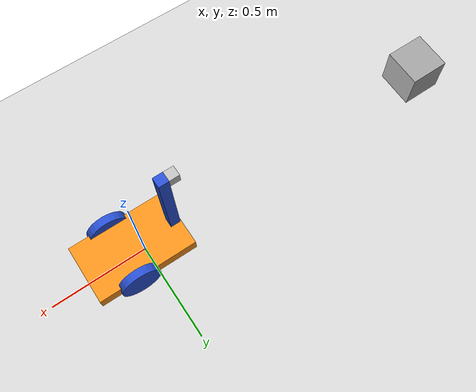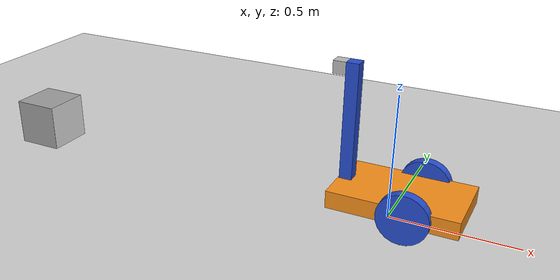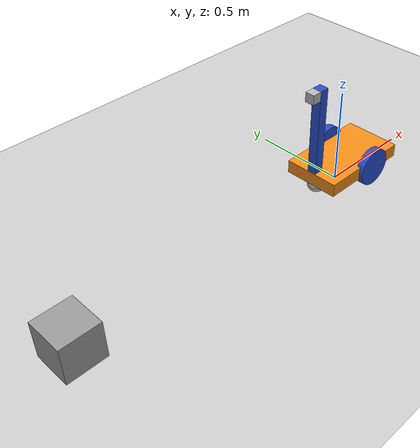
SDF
<sdf version="1.7">
 <world name="default">
  <light name="sun" type="directional">
   <pose>0 0 10 0 -0 0</pose>
   <diffuse>0.8 0.8 0.8 1</diffuse>
   <specular>0.2 0.2 0.2 1</specular>
   <attenuation>
    <range>1000</range>
    <constant>0.9</constant>
    <linear>0.01</linear>
    <quadratic>0.001</quadratic>
   </attenuation>
   <direction>-0.5 0.1 -0.9</direction>
   <spot><inner_angle>0</inner_angle><outer_angle>0</outer_angle><falloff>0</falloff></spot>
  </light>
  <model name="ground_plane">
   <static>1</static>
   <link name="link">
    <collision name="collision">
     <geometry><plane><normal>0 0 1</normal><size>100 100</size></plane></geometry>
     <surface>
      <contact><collide_bitmask>65535</collide_bitmask></contact>
      <friction><ode><mu>100</mu><mu2>50</mu2></ode></friction>
     </surface>
    </collision>
    <visual name="visual">
     <cast_shadows>0</cast_shadows>
     <geometry><plane><normal>0 0 1</normal><size>100 100</size></plane></geometry>
     <material>
      <script><uri>file://media/materials/scripts/gazebo.material</uri><name>Gazebo/Grey</name></script>
     </material>
    </visual>
   </link>
  </model>
  <gravity>0 0 -9.8</gravity>
  <magnetic_field>6e-06 2.3e-05 -4.2e-05</magnetic_field>
  <atmosphere type="adiabatic"/>
  <physics type="ode">
   <max_step_size>0.001</max_step_size>
   <real_time_factor>1</real_time_factor>
   <real_time_update_rate>1000</real_time_update_rate>
  </physics>
  <scene><ambient>0.4 0.4 0.4 1</ambient><background>0.7 0.7 0.7 1</background><shadows>1</shadows></scene>
  <spherical_coordinates>
   <surface_model>EARTH_WGS84</surface_model>
   <latitude_deg>0</latitude_deg>
   <longitude_deg>0</longitude_deg>
   <elevation>0</elevation>
   <heading_deg>0</heading_deg>
  </spherical_coordinates>
  <model name="marker20_box">
   <link name="marker">
    <inertial>
     <mass>0.1</mass>
     <inertia><ixx>0</ixx><ixy>0</ixy><ixz>0</ixz><iyy>0</iyy><iyz>0</iyz><izz>0</izz></inertia>
    </inertial>
    <self_collide>1</self_collide>
    <pose>-0.76428 -0.101106 0.120004 -0.015494 1.56996 -0.015507</pose>
    <visual name="visual">
     <geometry><box><size>0.2 0.2 0.001</size></box></geometry>
     <material>
      <script>
       <uri>model://marker20/material/scripts</uri>
       <uri>model://marker20/material/textures</uri>
       <name>Aruco/marker20</name>
      </script>
      <shader type="pixel"><normal_map>__default__</normal_map></shader>
      <emissive>0 0 0 1</emissive>
      <ambient>1 1 1 1</ambient>
      <diffuse>1 1 1 1</diffuse>
      <specular>0 0 0 1</specular>
     </material>
    </visual>
    <collision name="collision">
     <geometry><box><size>0.2 0.2 0.02</size></box></geometry>
     <surface>
      <friction>
       <ode><mu>1</mu><mu2>1</mu2><fdir1>0 0 0</fdir1><slip1>0</slip1><slip2>0</slip2></ode>
       <torsional>
        <coefficient>1</coefficient>
        <patch_radius>0</patch_radius>
        <surface_radius>0</surface_radius>
        <use_patch_radius>1</use_patch_radius>
        <ode><slip>0</slip></ode>
       </torsional>
      </friction>
      <bounce><restitution_coefficient>0</restitution_coefficient><threshold>1e+06</threshold></bounce>
      <contact>
       <collide_without_contact>0</collide_without_contact>
       <collide_without_contact_bitmask>1</collide_without_contact_bitmask>
       <collide_bitmask>1</collide_bitmask>
       <ode>
        <soft_cfm>0</soft_cfm>
        <soft_erp>0.2</soft_erp>
        <kp>1e+13</kp>
        <kd>1</kd>
        <max_vel>0.01</max_vel>
        <min_depth>0</min_depth>
       </ode>
       <bullet>
        <split_impulse>1</split_impulse>
        <split_impulse_penetration_threshold>-0.01</split_impulse_penetration_threshold>
        <soft_cfm>0</soft_cfm>
        <soft_erp>0.2</soft_erp>
        <kp>1e+13</kp>
        <kd>1</kd>
       </bullet>
      </contact>
     </surface>
    </collision>
   </link>
   <link name="link_1">
    <inertial>
     <mass>1</mass>
     <inertia>
      <ixx>0.166667</ixx>
      <ixy>0</ixy>
      <ixz>0</ixz>
      <iyy>0.166667</iyy>
      <iyz>0</iyz>
      <izz>0.166667</izz>
     </inertia>
    </inertial>
    <pose>-0.86428 -0.101106 0.12 -1.3e-05 -4.2e-05 0</pose>
    <visual name="visual">
     <geometry><box><size>0.2 0.2 0.2</size></box></geometry>
     <material>
      <lighting>1</lighting>
      <script><uri>file://media/materials/scripts/gazebo.material</uri><name>Gazebo/Grey</name></script>
      <shader type="pixel"><normal_map>__default__</normal_map></shader>
      <emissive>0 0 0 1</emissive>
      <ambient>0.3 0.3 0.3 1</ambient>
      <diffuse>0.7 0.7 0.7 1</diffuse>
      <specular>0.01 0.01 0.01 1</specular>
     </material>
    </visual>
    <collision name="collision">
     <geometry><box><size>0.2 0.2 0.2</size></box></geometry>
     <surface>
      <friction>
       <ode><mu>1</mu><mu2>1</mu2><fdir1>0 0 0</fdir1><slip1>0</slip1><slip2>0</slip2></ode>
       <torsional>
        <coefficient>1</coefficient>
        <patch_radius>0</patch_radius>
        <surface_radius>0</surface_radius>
        <use_patch_radius>1</use_patch_radius>
        <ode><slip>0</slip></ode>
       </torsional>
      </friction>
      <bounce><restitution_coefficient>0</restitution_coefficient><threshold>1e+06</threshold></bounce>
      <contact>
       <collide_without_contact>0</collide_without_contact>
       <collide_without_contact_bitmask>1</collide_without_contact_bitmask>
       <collide_bitmask>1</collide_bitmask>
       <ode>
        <soft_cfm>0</soft_cfm>
        <soft_erp>0.2</soft_erp>
        <kp>1e+13</kp>
        <kd>1</kd>
        <max_vel>0.01</max_vel>
        <min_depth>0</min_depth>
       </ode>
       <bullet>
        <split_impulse>1</split_impulse>
        <split_impulse_penetration_threshold>-0.01</split_impulse_penetration_threshold>
        <soft_cfm>0</soft_cfm>
        <soft_erp>0.2</soft_erp>
        <kp>1e+13</kp>
        <kd>1</kd>
       </bullet>
      </contact>
     </surface>
    </collision>
   </link>
   <joint name="link_1_JOINT_3" type="fixed">
    <parent>link_1</parent>
    <child>marker</child>
    <physics>
     <ode><limit><cfm>0</cfm><erp>0.2</erp></limit><suspension><cfm>0</cfm><erp>0.2</erp></suspension></ode>
    </physics>
   </joint>
   <static>0</static>
   <pose>-0.784105 0.079602 -0.020018 6e-06 1.8e-05 0.001478</pose>
  </model>
  <model name="robot1">
   <link name="link_chassis">
    <inertial>
     <pose>1e-06 0 0.1 0 -0 0</pose>
     <mass>5.00002</mass>
     <inertia>
      <ixx>0.039545</ixx>
      <ixy>0</ixy>
      <ixz>-7.24998e-07</ixz>
      <iyy>0.106213</iyy>
      <iyz>0</iyz>
      <izz>0.106212</izz>
     </inertia>
    </inertial>
    <collision name="link_chassis_fixed_joint_lump__collision_chassis_collision">
     <geometry><box><size>0.5 0.3 0.07</size></box></geometry>
    </collision>
    <collision name="link_chassis_fixed_joint_lump__caster_front_collision_collision_1">
     <pose>0.35 0 -0.05 0 -0 0</pose>
     <geometry><sphere><radius>0.05</radius></sphere></geometry>
    </collision>
    <collision name="link_chassis_fixed_joint_lump__camera_holder_link_collision_2">
     <pose>0.22 0 0.25 0 -0 0</pose>
     <geometry><box><size>0.05 0.05 0.5</size></box></geometry>
    </collision>
    <collision name="link_chassis_fixed_joint_lump__camera_link_collision_3">
     <pose>0.27 0 0.475 0 -0 0</pose>
     <geometry><box><size>0.05 0.05 0.05</size></box></geometry>
    </collision>
    <visual name="link_chassis_visual">
     <geometry><box><size>0.5 0.3 0.07</size></box></geometry>
     <material>
      <script><name>Gazebo/Orange</name><uri>file://media/materials/scripts/gazebo.material</uri></script>
     </material>
    </visual>
    <visual name="link_chassis_fixed_joint_lump__caster_front_visual_visual_1">
     <pose>0.2 0 -0.05 0 -0 0</pose>
     <geometry><sphere><radius>0.05</radius></sphere></geometry>
    </visual>
    <visual name="link_chassis_fixed_joint_lump__camera_holder_link_visual_2">
     <pose>0.22 0 0.25 0 -0 0</pose>
     <geometry><box><size>0.05 0.05 0.5</size></box></geometry>
     <material>
      <script><name>Gazebo/Blue</name><uri>file://media/materials/scripts/gazebo.material</uri></script>
     </material>
    </visual>
    <visual name="link_chassis_fixed_joint_lump__camera_link_visual_3">
     <pose>0.27 0 0.475 0 -0 0</pose>
     <geometry><box><size>0.05 0.05 0.05</size></box></geometry>
    </visual>
    <sensor name="camera1" type="camera">
     <update_rate>30</update_rate>
     <camera name="head">
      <horizontal_fov>1.39626</horizontal_fov>
      <image><width>800</width><height>800</height><format>R8G8B8</format></image>
      <clip><near>0.02</near><far>300</far></clip>
      <noise><type>gaussian</type><mean>0</mean><stddev>0.007</stddev></noise>
     </camera>
     <plugin name="camera_controller" filename="libgazebo_ros_camera.so">
      <alwaysOn>1</alwaysOn>
      <updateRate>30.0</updateRate>
      <cameraName>robot/camera1</cameraName>
      <imageTopicName>image_raw</imageTopicName>
      <cameraInfoTopicName>camera_info</cameraInfoTopicName>
      <frameName>camera_link</frameName>
      <hackBaseline>0.07</hackBaseline>
      <distortionK1>0.0</distortionK1>
      <distortionK2>0.0</distortionK2>
      <distortionK3>0.0</distortionK3>
      <distortionT1>0.0</distortionT1>
      <distortionT2>0.0</distortionT2>
      <robotNamespace>/</robotNamespace>
     </plugin>
     <pose>0.27 0 0.45 0 -0 0</pose>
    </sensor>
   </link>
   <joint name="joint_left_wheel" type="revolute">
    <pose relative_to="link_chassis">-0.05 -0.15 0 0 -0 0</pose>
    <parent>link_chassis</parent>
    <child>link_left_wheel</child>
    <axis>
     <xyz>0 1 0</xyz>
     <limit><lower>-1e+16</lower><upper>1e+16</upper></limit>
     <dynamics><spring_reference>0</spring_reference><spring_stiffness>0</spring_stiffness></dynamics>
    </axis>
   </joint>
   <link name="link_left_wheel">
    <pose relative_to="joint_left_wheel">0 0 0 0 -0 0</pose>
    <inertial>
     <pose>0 0 0 -0 1.5707 1.5707</pose>
     <mass>0.2</mass>
     <inertia>
      <ixx>0.000526667</ixx>
      <ixy>0</ixy>
      <ixz>0</ixz>
      <iyy>0.000526667</iyy>
      <iyz>0</iyz>
      <izz>0.001</izz>
     </inertia>
    </inertial>
    <collision name="link_left_wheel_collision_collision">
     <pose>0 0 0 1.57089 1.57079 -3.14159</pose>
     <geometry><cylinder><length>0.04</length><radius>0.1</radius></cylinder></geometry>
    </collision>
    <visual name="link_left_wheel_visual_visual">
     <pose>0 0 0 1.57089 1.57079 -3.14159</pose>
     <geometry><cylinder><length>0.04</length><radius>0.1</radius></cylinder></geometry>
     <material>
      <script><name>Gazebo/Blue</name><uri>file://media/materials/scripts/gazebo.material</uri></script>
     </material>
    </visual>
   </link>
   <joint name="joint_right_wheel" type="revolute">
    <pose relative_to="link_chassis">-0.05 0.15 0 0 -0 0</pose>
    <parent>link_chassis</parent>
    <child>link_right_wheel</child>
    <axis>
     <xyz>0 1 0</xyz>
     <limit><lower>-1e+16</lower><upper>1e+16</upper></limit>
     <dynamics><spring_reference>0</spring_reference><spring_stiffness>0</spring_stiffness></dynamics>
    </axis>
   </joint>
   <link name="link_right_wheel">
    <pose relative_to="joint_right_wheel">0 0 0 0 -0 0</pose>
    <inertial>
     <pose>0 0 0 -0 1.5707 1.5707</pose>
     <mass>0.2</mass>
     <inertia>
      <ixx>0.000526667</ixx>
      <ixy>0</ixy>
      <ixz>0</ixz>
      <iyy>0.000526667</iyy>
      <iyz>0</iyz>
      <izz>0.001</izz>
     </inertia>
    </inertial>
    <collision name="link_right_wheel_collision_collision">
     <pose>0 0 0 1.57089 1.57079 -3.14159</pose>
     <geometry><cylinder><length>0.04</length><radius>0.1</radius></cylinder></geometry>
    </collision>
    <visual name="link_right_wheel_visual_visual">
     <pose>0 0 0 1.57089 1.57079 -3.14159</pose>
     <geometry><cylinder><length>0.04</length><radius>0.1</radius></cylinder></geometry>
     <material>
      <script><name>Gazebo/Blue</name><uri>file://media/materials/scripts/gazebo.material</uri></script>
     </material>
    </visual>
   </link>
   <plugin name="differential_drive_controller" filename="libgazebo_ros_diff_drive.so">
    <legacyMode>1</legacyMode>
    <alwaysOn>1</alwaysOn>
    <updateRate>20</updateRate>
    <leftJoint>joint_right_wheel</leftJoint>
    <rightJoint>joint_left_wheel</rightJoint>
    <wheelSeparation>0.2</wheelSeparation>
    <wheelDiameter>0.2</wheelDiameter>
    <torque>0.1</torque>
    <commandTopic>cmd_vel</commandTopic>
    <odometryTopic>odom</odometryTopic>
    <odometryFrame>odom</odometryFrame>
    <robotBaseFrame>link_chassis</robotBaseFrame>
    <robotNamespace>/</robotNamespace>
   </plugin>
   <static>0</static>
   <plugin name="gazebo_ros_control" filename="libgazebo_ros_control.so">
    <robotNamespace>/robot</robotNamespace>
    <legacyModeNS>1</legacyModeNS>
   </plugin>
   <pose>0.048105 -0.001404 0.100001 -1e-05 -8e-06 3.14117</pose>
  </model>
 </world>
</sdf>
